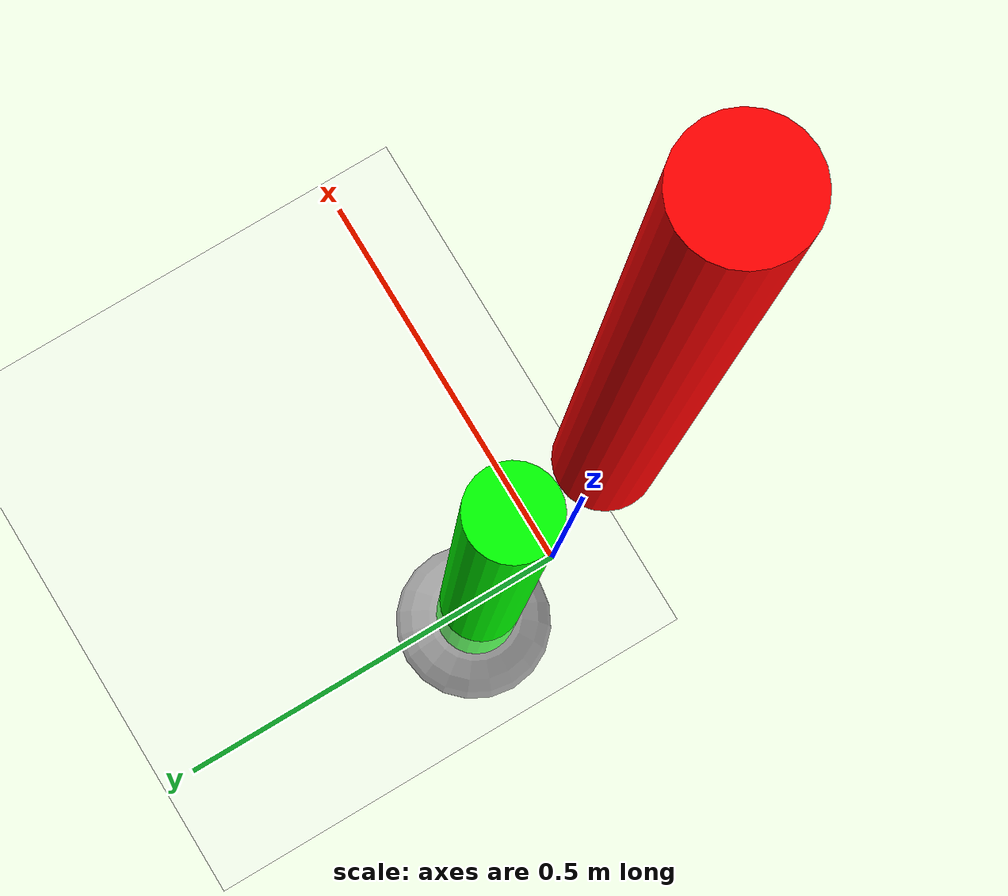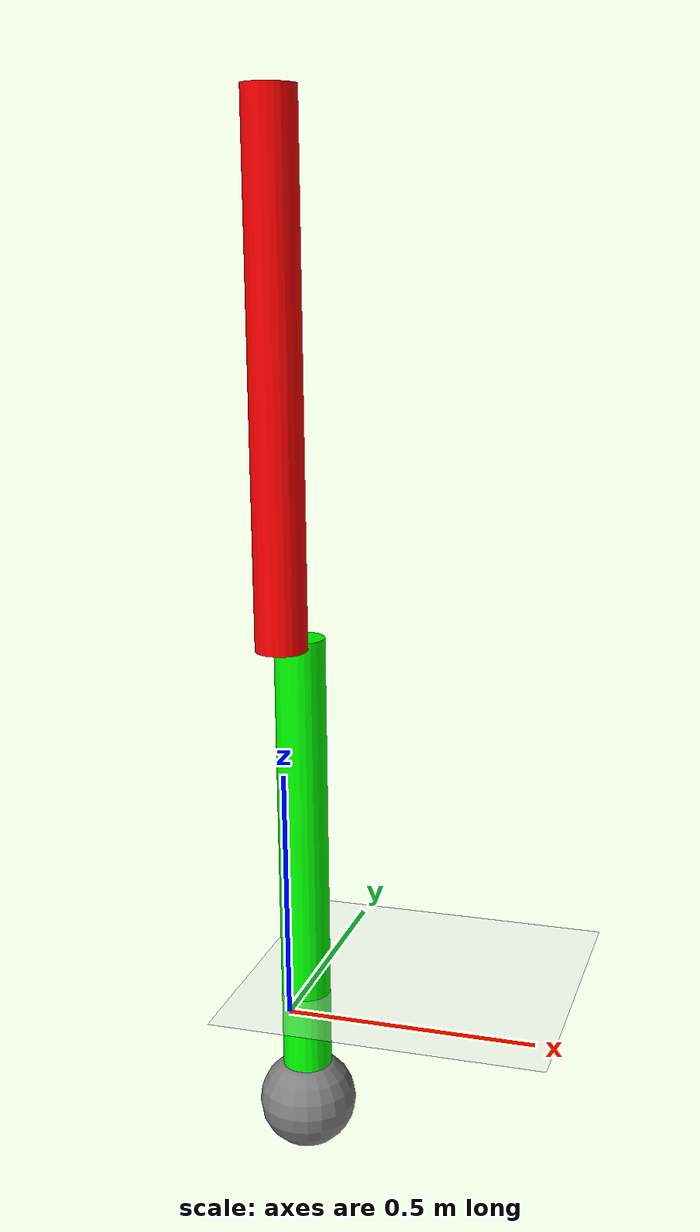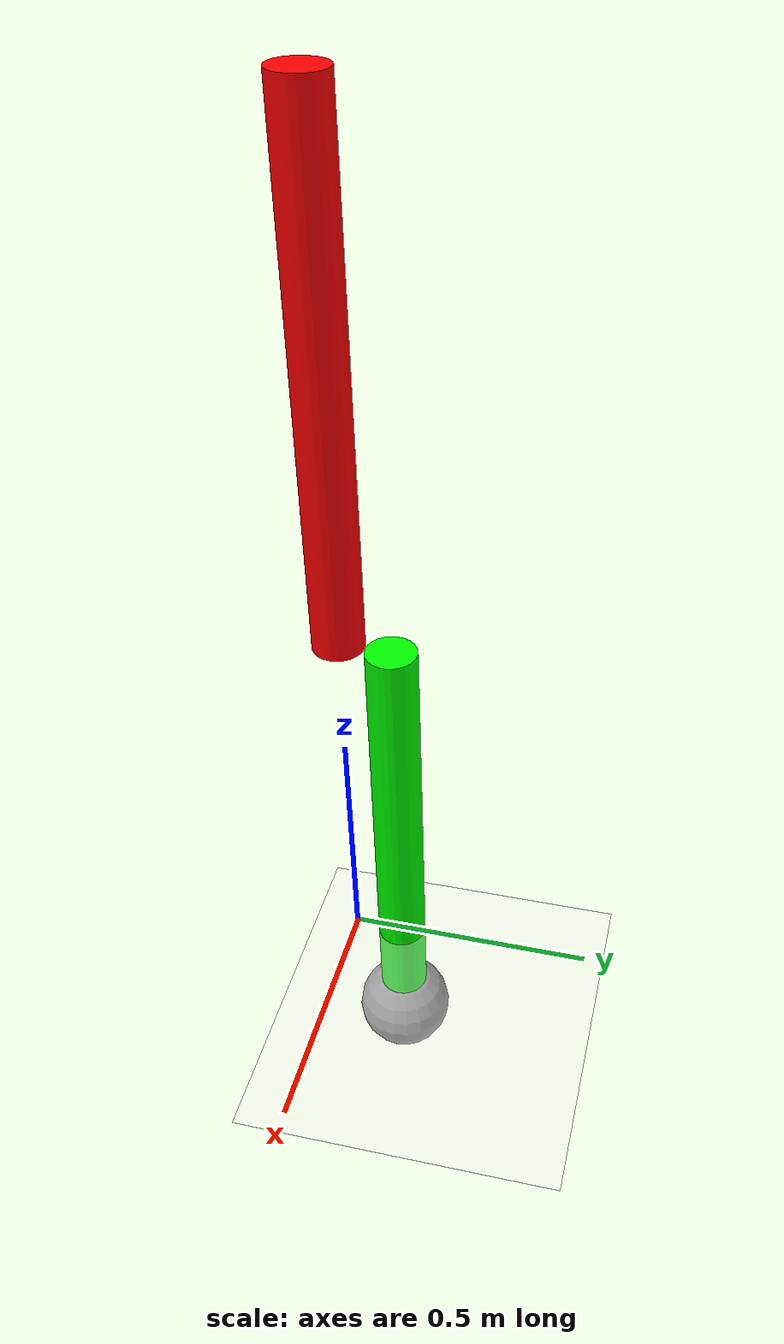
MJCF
<mujoco>
	<option gravity="0 0 -9.81" integrator="RK4">
		<flag energy="enable" contact="disable"/>
	</option>
	<size nuserdata="2"/>
	<worldbody>
		<light diffuse=".5 .5 .5" pos="0 0 0" dir="0 0 -1"/>
		<geom type="plane" size="1 1 .1" rgba="1 1 1 1"/>
		<body pos="0 0 1.25" euler="0 0 0">
			<joint name="pin1" type="hinge" axis="0 1 0" pos="0 0 .5"/>
			<geom type="cylinder" size=".05 .5" rgba="1 0 0 1" mass="1"/>

			<!--Moved a bit by y-axis to prevent collision-->
			<body pos="0 0.1 -1" euler="0 0 0">
				<joint name="pin2" type="hinge" axis="0 1 0" pos="0 0 0.5"/>
				<geom type="cylinder" size="0.05 0.5" rgba="0 1 0 1" mass="1"/>
				<site name="endeff" pos="0 0 -0.5" size="0.1"/>
 			</body>

		</body>
	</worldbody>
	<actuator>
		<!--Motor gets to know joint from the joint name -->
		<position name="pservo1" joint="pin1" kp="500"/>
		<velocity name="vservo1" joint="pin1" kv="100"/>

	<position name="pservo2" joint="pin2" kp="500"/>
		<velocity name="vservo2" joint="pin2" kv="100"/>
	</actuator>
	<sensor>
		<framepos objtype="site" objname="endeff"/>
		<framelinvel objtype="site" objname="endeff"/>
	</sensor>
</mujoco>
